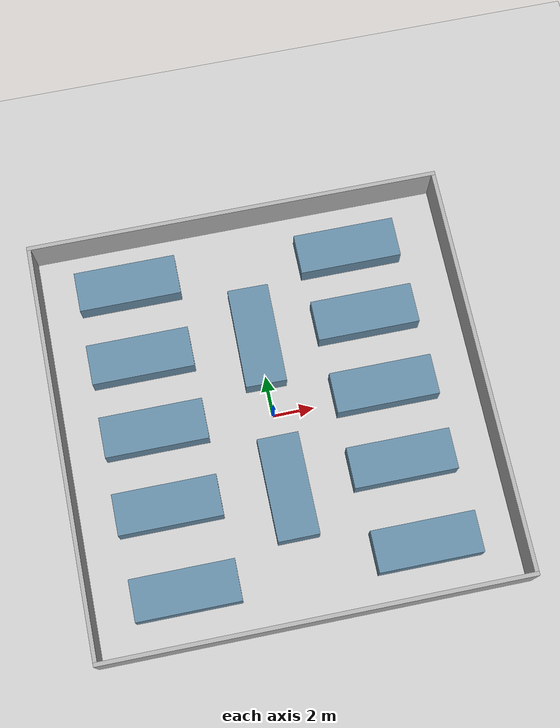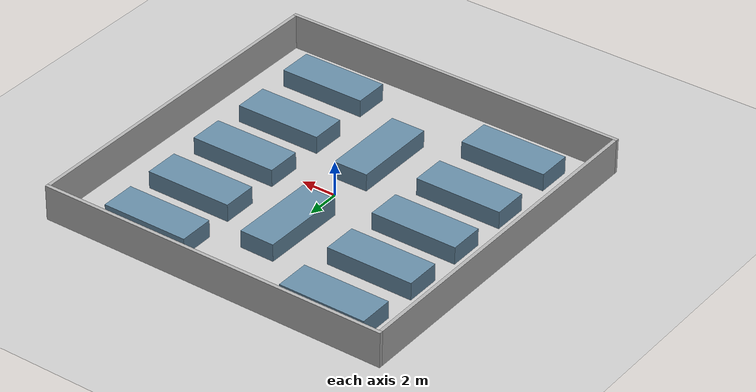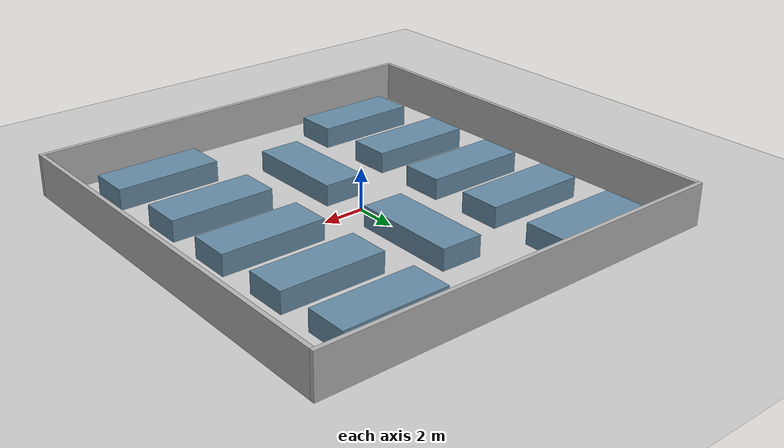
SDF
<sdf version="1.7">
 <world name="event_venue_lcp">
  <light name="sun" type="directional">
   <pose>0 0 10 0 -0 0</pose>
   <diffuse>0.8 0.8 0.8 1</diffuse>
   <specular>0.2 0.2 0.2 1</specular>
   <attenuation>
    <range>1000</range>
    <constant>0.9</constant>
    <linear>0.01</linear>
    <quadratic>0.001</quadratic>
   </attenuation>
   <direction>-0.5 0.1 -0.9</direction>
   <spot><inner_angle>0</inner_angle><outer_angle>0</outer_angle><falloff>0</falloff></spot>
  </light>
  <model name="ground_plane">
   <static>1</static>
   <link name="link">
    <collision name="collision">
     <geometry><plane><normal>0 0 1</normal><size>100 100</size></plane></geometry>
     <surface>
      <contact><collide_bitmask>65535</collide_bitmask></contact>
      <friction><ode><mu>100</mu><mu2>50</mu2></ode></friction>
     </surface>
    </collision>
    <visual name="visual">
     <cast_shadows>0</cast_shadows>
     <geometry><plane><normal>0 0 1</normal><size>100 100</size></plane></geometry>
     <material>
      <script><uri>file://media/materials/scripts/gazebo.material</uri><name>Gazebo/Grey</name></script>
     </material>
    </visual>
   </link>
  </model>
  <physics type="ode">
   <real_time_update_rate>1000</real_time_update_rate>
   <max_step_size>0.001</max_step_size>
   <real_time_factor>1</real_time_factor>
  </physics>
  <scene><ambient>0.5 0.5 0.5 1</ambient><background>0.7 0.7 0.7 1</background><shadows>0</shadows></scene>
  <model name="outer_north">
   <static>1</static>
   <pose>0 10.1 1 0 -0 0</pose>
   <link name="link">
    <collision name="c"><geometry><box><size>20.4 0.2 2</size></box></geometry></collision>
    <visual name="v">
     <geometry><box><size>20.4 0.2 2</size></box></geometry>
     <material><ambient>0.6 0.6 0.6 1</ambient><diffuse>0.7 0.7 0.7 1</diffuse></material>
    </visual>
   </link>
  </model>
  <model name="outer_south">
   <static>1</static>
   <pose>0 -10.1 1 0 -0 0</pose>
   <link name="link">
    <collision name="c"><geometry><box><size>20.4 0.2 2</size></box></geometry></collision>
    <visual name="v">
     <geometry><box><size>20.4 0.2 2</size></box></geometry>
     <material><ambient>0.6 0.6 0.6 1</ambient><diffuse>0.7 0.7 0.7 1</diffuse></material>
    </visual>
   </link>
  </model>
  <model name="outer_east">
   <static>1</static>
   <pose>10.1 0 1 0 -0 0</pose>
   <link name="link">
    <collision name="c"><geometry><box><size>0.2 20 2</size></box></geometry></collision>
    <visual name="v">
     <geometry><box><size>0.2 20 2</size></box></geometry>
     <material><ambient>0.6 0.6 0.6 1</ambient><diffuse>0.7 0.7 0.7 1</diffuse></material>
    </visual>
   </link>
  </model>
  <model name="outer_west">
   <static>1</static>
   <pose>-10.1 0 1 0 -0 0</pose>
   <link name="link">
    <collision name="c"><geometry><box><size>0.2 20 2</size></box></geometry></collision>
    <visual name="v">
     <geometry><box><size>0.2 20 2</size></box></geometry>
     <material><ambient>0.6 0.6 0.6 1</ambient><diffuse>0.7 0.7 0.7 1</diffuse></material>
    </visual>
   </link>
  </model>
  <model name="booth_1">
   <static>1</static>
   <pose>-5.74077 0.307049 0.5 0 -0 0</pose>
   <link name="link">
    <collision name="c"><geometry><box><size>5 2 1</size></box></geometry></collision>
    <visual name="v">
     <geometry><box><size>5 2 1</size></box></geometry>
     <material><ambient>0.3 0.45 0.55 1</ambient><diffuse>0.4 0.55 0.65 1</diffuse></material>
    </visual>
   </link>
  </model>
  <model name="booth_2">
   <static>1</static>
   <pose>5.48633 0.279578 0.5 0 -0 0</pose>
   <link name="link">
    <collision name="c"><geometry><box><size>5 2 1</size></box></geometry></collision>
    <visual name="v">
     <geometry><box><size>5 2 1</size></box></geometry>
     <material><ambient>0.3 0.45 0.55 1</ambient><diffuse>0.4 0.55 0.65 1</diffuse></material>
    </visual>
   </link>
  </model>
  <model name="booth_3">
   <static>1</static>
   <pose>-5.75749 -3.47053 0.5 0 -0 0</pose>
   <link name="link">
    <collision name="c"><geometry><box><size>5 2 1</size></box></geometry></collision>
    <visual name="v">
     <geometry><box><size>5 2 1</size></box></geometry>
     <material><ambient>0.3 0.45 0.55 1</ambient><diffuse>0.4 0.55 0.65 1</diffuse></material>
    </visual>
   </link>
  </model>
  <model name="booth_4">
   <static>1</static>
   <pose>5.49593 -3.47057 0.5 0 -0 0</pose>
   <link name="link">
    <collision name="c"><geometry><box><size>5 2 1</size></box></geometry></collision>
    <visual name="v">
     <geometry><box><size>5 2 1</size></box></geometry>
     <material><ambient>0.3 0.45 0.55 1</ambient><diffuse>0.4 0.55 0.65 1</diffuse></material>
    </visual>
   </link>
  </model>
  <model name="booth_5">
   <static>1</static>
   <pose>-5.65342 -7.54145 0.5 0 -0 0</pose>
   <link name="link">
    <collision name="c"><geometry><box><size>5 2 1</size></box></geometry></collision>
    <visual name="v">
     <geometry><box><size>5 2 1</size></box></geometry>
     <material><ambient>0.3 0.45 0.55 1</ambient><diffuse>0.4 0.55 0.65 1</diffuse></material>
    </visual>
   </link>
  </model>
  <model name="booth_6">
   <static>1</static>
   <pose>5.73848 -7.55816 0.5 0 -0 0</pose>
   <link name="link">
    <collision name="c"><geometry><box><size>5 2 1</size></box></geometry></collision>
    <visual name="v">
     <geometry><box><size>5 2 1</size></box></geometry>
     <material><ambient>0.3 0.45 0.55 1</ambient><diffuse>0.4 0.55 0.65 1</diffuse></material>
    </visual>
   </link>
  </model>
  <gravity>0 0 -9.8</gravity>
  <magnetic_field>6e-06 2.3e-05 -4.2e-05</magnetic_field>
  <atmosphere type="adiabatic"/>
  <audio><device>default</device></audio>
  <spherical_coordinates>
   <surface_model>EARTH_WGS84</surface_model>
   <latitude_deg>0</latitude_deg>
   <longitude_deg>0</longitude_deg>
   <elevation>0</elevation>
   <heading_deg>0</heading_deg>
  </spherical_coordinates>
  <model name="booth_1_clone">
   <static>1</static>
   <pose>-5.75402 3.98443 0.5 0 -0 0</pose>
   <link name="link">
    <collision name="c"><geometry><box><size>5 2 1</size></box></geometry></collision>
    <visual name="v">
     <geometry><box><size>5 2 1</size></box></geometry>
     <material><ambient>0.3 0.45 0.55 1</ambient><diffuse>0.4 0.55 0.65 1</diffuse></material>
    </visual>
   </link>
  </model>
  <model name="booth_1_clone_0">
   <static>1</static>
   <pose>-5.74321 7.79578 0.5 0 -0 0</pose>
   <link name="link">
    <collision name="c"><geometry><box><size>5 2 1</size></box></geometry></collision>
    <visual name="v">
     <geometry><box><size>5 2 1</size></box></geometry>
     <material><ambient>0.3 0.45 0.55 1</ambient><diffuse>0.4 0.55 0.65 1</diffuse></material>
    </visual>
   </link>
  </model>
  <model name="booth_1_clone_1">
   <static>1</static>
   <pose>5.3688 4.02868 0.5 0 -0 0</pose>
   <link name="link">
    <collision name="c"><geometry><box><size>5 2 1</size></box></geometry></collision>
    <visual name="v">
     <geometry><box><size>5 2 1</size></box></geometry>
     <material><ambient>0.3 0.45 0.55 1</ambient><diffuse>0.4 0.55 0.65 1</diffuse></material>
    </visual>
   </link>
  </model>
  <model name="booth_1_clone_2">
   <static>1</static>
   <pose>5.26051 7.59783 0.5 0 -0 0</pose>
   <link name="link">
    <collision name="c"><geometry><box><size>5 2 1</size></box></geometry></collision>
    <visual name="v">
     <geometry><box><size>5 2 1</size></box></geometry>
     <material><ambient>0.3 0.45 0.55 1</ambient><diffuse>0.4 0.55 0.65 1</diffuse></material>
    </visual>
   </link>
  </model>
  <model name="booth_1_clone_3">
   <static>1</static>
   <pose>-0.051456 -3.7285 0.5 0 -0 1.57375</pose>
   <link name="link">
    <collision name="c"><geometry><box><size>5 2 1</size></box></geometry></collision>
    <visual name="v">
     <geometry><box><size>5 2 1</size></box></geometry>
     <material><ambient>0.3 0.45 0.55 1</ambient><diffuse>0.4 0.55 0.65 1</diffuse></material>
    </visual>
   </link>
  </model>
  <model name="booth_1_clone_5">
   <static>1</static>
   <pose>-0.034579 3.88269 0.5 0 -0 1.55942</pose>
   <link name="link">
    <collision name="c"><geometry><box><size>5 2 1</size></box></geometry></collision>
    <visual name="v">
     <geometry><box><size>5 2 1</size></box></geometry>
     <material><ambient>0.3 0.45 0.55 1</ambient><diffuse>0.4 0.55 0.65 1</diffuse></material>
    </visual>
   </link>
  </model>
 </world>
</sdf>
